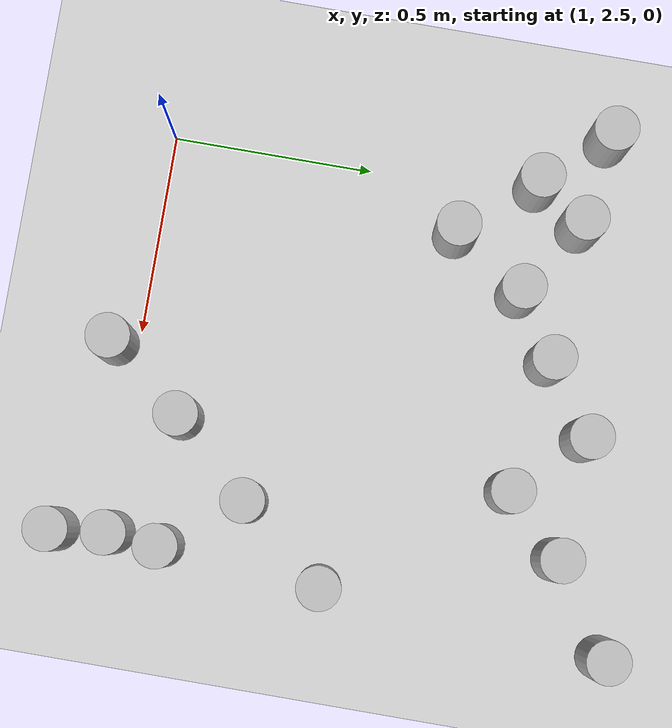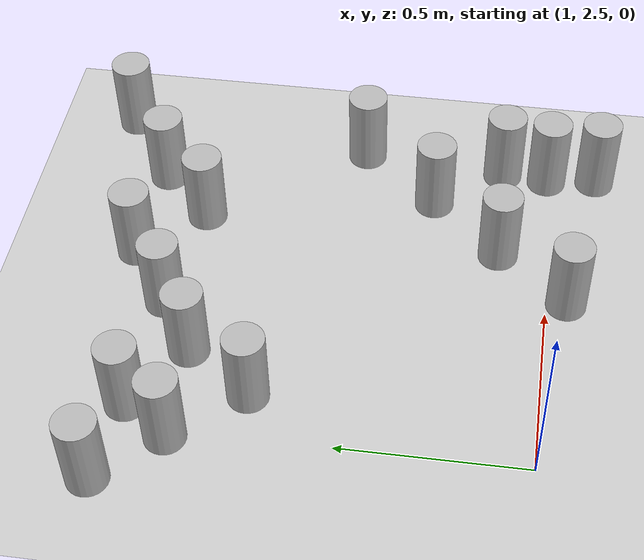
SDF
<sdf version="1.6">
 <world name="default">
  <model name="ground_plane">
   <static>1</static>
   <link name="link">
    <collision name="collision">
     <geometry><plane><normal>0 0 1</normal><size>100 100</size></plane></geometry>
     <surface><friction><ode><mu>100</mu><mu2>50</mu2></ode></friction></surface>
    </collision>
    <visual name="visual">
     <cast_shadows>0</cast_shadows>
     <geometry><plane><normal>0 0 1</normal><size>100 100</size></plane></geometry>
     <material>
      <script><uri>file://media/materials/scripts/gazebo.material</uri><name>Gazebo/Grey</name></script>
     </material>
    </visual>
   </link>
  </model>
  <model name="beer_4_clone">
   <link name="link">
    <pose>0 0 0.115 0 -0 0</pose>
    <inertial>
     <mass>0.01</mass>
     <inertia><ixx>0.00058</ixx><ixy>0</ixy><ixz>0</ixz><iyy>0.00058</iyy><iyz>0</iyz><izz>0.00019</izz></inertia>
    </inertial>
    <collision name="collision">
     <geometry><cylinder><radius>0.055</radius><length>0.23</length></cylinder></geometry>
    </collision>
    <visual name="visual">
     <geometry><cylinder><radius>0.055</radius><length>0.23</length></cylinder></geometry>
     <material>
      <script>
       <uri>model://beer/materials/scripts</uri>
       <uri>model://beer/materials/textures</uri>
       <name>Beer/Diffuse</name>
      </script>
     </material>
    </visual>
   </link>
   <pose>2.10824 3.75984 -3e-06 -0 -0 -1e-06</pose>
  </model>
  <model name="beer_4_clone_0">
   <link name="link">
    <pose>0 0 0.115 0 -0 0</pose>
    <inertial>
     <mass>0.01</mass>
     <inertia><ixx>0.00058</ixx><ixy>0</ixy><ixz>0</ixz><iyy>0.00058</iyy><iyz>0</iyz><izz>0.00019</izz></inertia>
    </inertial>
    <collision name="collision">
     <geometry><cylinder><radius>0.055</radius><length>0.23</length></cylinder></geometry>
    </collision>
    <visual name="visual">
     <geometry><cylinder><radius>0.055</radius><length>0.23</length></cylinder></geometry>
     <material>
      <script>
       <uri>model://beer/materials/scripts</uri>
       <uri>model://beer/materials/textures</uri>
       <name>Beer/Diffuse</name>
      </script>
     </material>
    </visual>
   </link>
   <pose>1.8879 3.61216 -3e-06 -0 -0 -1e-06</pose>
  </model>
  <model name="beer_4_clone_1">
   <link name="link">
    <pose>0 0 0.115 0 -0 0</pose>
    <inertial>
     <mass>0.01</mass>
     <inertia><ixx>0.00058</ixx><ixy>0</ixy><ixz>0</ixz><iyy>0.00058</iyy><iyz>0</iyz><izz>0.00019</izz></inertia>
    </inertial>
    <collision name="collision">
     <geometry><cylinder><radius>0.055</radius><length>0.23</length></cylinder></geometry>
    </collision>
    <visual name="visual">
     <geometry><cylinder><radius>0.055</radius><length>0.23</length></cylinder></geometry>
     <material>
      <script>
       <uri>model://beer/materials/scripts</uri>
       <uri>model://beer/materials/textures</uri>
       <name>Beer/Diffuse</name>
      </script>
     </material>
    </visual>
   </link>
   <pose>1.74318 3.46925 -3e-06 -0 -0 -1e-06</pose>
  </model>
  <model name="beer_4_clone_2">
   <link name="link">
    <pose>0 0 0.115 0 -0 0</pose>
    <inertial>
     <mass>0.01</mass>
     <inertia><ixx>0.00058</ixx><ixy>0</ixy><ixz>0</ixz><iyy>0.00058</iyy><iyz>0</iyz><izz>0.00019</izz></inertia>
    </inertial>
    <collision name="collision">
     <geometry><cylinder><radius>0.055</radius><length>0.23</length></cylinder></geometry>
    </collision>
    <visual name="visual">
     <geometry><cylinder><radius>0.055</radius><length>0.23</length></cylinder></geometry>
     <material>
      <script>
       <uri>model://beer/materials/scripts</uri>
       <uri>model://beer/materials/textures</uri>
       <name>Beer/Diffuse</name>
      </script>
     </material>
    </visual>
   </link>
   <pose>1.58363 3.63428 -3e-06 -0 -0 -1e-06</pose>
  </model>
  <model name="beer_4_clone_3">
   <link name="link">
    <pose>0 0 0.115 0 -0 0</pose>
    <inertial>
     <mass>0.01</mass>
     <inertia><ixx>0.00058</ixx><ixy>0</ixy><ixz>0</ixz><iyy>0.00058</iyy><iyz>0</iyz><izz>0.00019</izz></inertia>
    </inertial>
    <collision name="collision">
     <geometry><cylinder><radius>0.055</radius><length>0.23</length></cylinder></geometry>
    </collision>
    <visual name="visual">
     <geometry><cylinder><radius>0.055</radius><length>0.23</length></cylinder></geometry>
     <material>
      <script>
       <uri>model://beer/materials/scripts</uri>
       <uri>model://beer/materials/textures</uri>
       <name>Beer/Diffuse</name>
      </script>
     </material>
    </visual>
   </link>
   <pose>1.41011 3.51475 -3e-06 -0 -0 -1e-06</pose>
  </model>
  <model name="beer_4_clone_4">
   <link name="link">
    <pose>0 0 0.115 0 -0 0</pose>
    <inertial>
     <mass>0.01</mass>
     <inertia><ixx>0.00058</ixx><ixy>0</ixy><ixz>0</ixz><iyy>0.00058</iyy><iyz>0</iyz><izz>0.00019</izz></inertia>
    </inertial>
    <collision name="collision">
     <geometry><cylinder><radius>0.055</radius><length>0.23</length></cylinder></geometry>
    </collision>
    <visual name="visual">
     <geometry><cylinder><radius>0.055</radius><length>0.23</length></cylinder></geometry>
     <material>
      <script>
       <uri>model://beer/materials/scripts</uri>
       <uri>model://beer/materials/textures</uri>
       <name>Beer/Diffuse</name>
      </script>
     </material>
    </visual>
   </link>
   <pose>1.25318 3.41503 -3e-06 -0 -0 -1e-06</pose>
  </model>
  <model name="beer_4_clone_5">
   <link name="link">
    <pose>0 0 0.115 0 -0 0</pose>
    <inertial>
     <mass>0.01</mass>
     <inertia><ixx>0.00058</ixx><ixy>0</ixy><ixz>0</ixz><iyy>0.00058</iyy><iyz>0</iyz><izz>0.00019</izz></inertia>
    </inertial>
    <collision name="collision">
     <geometry><cylinder><radius>0.055</radius><length>0.23</length></cylinder></geometry>
    </collision>
    <visual name="visual">
     <geometry><cylinder><radius>0.055</radius><length>0.23</length></cylinder></geometry>
     <material>
      <script>
       <uri>model://beer/materials/scripts</uri>
       <uri>model://beer/materials/textures</uri>
       <name>Beer/Diffuse</name>
      </script>
     </material>
    </visual>
   </link>
   <pose>1.12951 3.23472 -3e-06 -0 -0 -1e-06</pose>
  </model>
  <model name="beer_4_clone_6">
   <link name="link">
    <pose>0 0 0.115 0 -0 0</pose>
    <inertial>
     <mass>0.01</mass>
     <inertia><ixx>0.00058</ixx><ixy>0</ixy><ixz>0</ixz><iyy>0.00058</iyy><iyz>0</iyz><izz>0.00019</izz></inertia>
    </inertial>
    <collision name="collision">
     <geometry><cylinder><radius>0.055</radius><length>0.23</length></cylinder></geometry>
    </collision>
    <visual name="visual">
     <geometry><cylinder><radius>0.055</radius><length>0.23</length></cylinder></geometry>
     <material>
      <script>
       <uri>model://beer/materials/scripts</uri>
       <uri>model://beer/materials/textures</uri>
       <name>Beer/Diffuse</name>
      </script>
     </material>
    </visual>
   </link>
   <pose>0.978681 3.41554 -3e-06 -0 -0 -1e-06</pose>
  </model>
  <model name="beer_4_clone_7">
   <link name="link">
    <pose>0 0 0.115 0 -0 0</pose>
    <inertial>
     <mass>0.01</mass>
     <inertia><ixx>0.00058</ixx><ixy>0</ixy><ixz>0</ixz><iyy>0.00058</iyy><iyz>0</iyz><izz>0.00019</izz></inertia>
    </inertial>
    <collision name="collision">
     <geometry><cylinder><radius>0.055</radius><length>0.23</length></cylinder></geometry>
    </collision>
    <visual name="visual">
     <geometry><cylinder><radius>0.055</radius><length>0.23</length></cylinder></geometry>
     <material>
      <script>
       <uri>model://beer/materials/scripts</uri>
       <uri>model://beer/materials/textures</uri>
       <name>Beer/Diffuse</name>
      </script>
     </material>
    </visual>
   </link>
   <pose>2.01904 2.64681 -3e-06 -0 -0 -1e-06</pose>
  </model>
  <model name="beer_4_clone_8">
   <link name="link">
    <pose>0 0 0.115 0 -0 0</pose>
    <inertial>
     <mass>0.01</mass>
     <inertia><ixx>0.00058</ixx><ixy>0</ixy><ixz>0</ixz><iyy>0.00058</iyy><iyz>0</iyz><izz>0.00019</izz></inertia>
    </inertial>
    <collision name="collision">
     <geometry><cylinder><radius>0.055</radius><length>0.23</length></cylinder></geometry>
    </collision>
    <visual name="visual">
     <geometry><cylinder><radius>0.055</radius><length>0.23</length></cylinder></geometry>
     <material>
      <script>
       <uri>model://beer/materials/scripts</uri>
       <uri>model://beer/materials/textures</uri>
       <name>Beer/Diffuse</name>
      </script>
     </material>
    </visual>
   </link>
   <pose>2.00769 2.51934 -3e-06 -0 -0 -1e-06</pose>
  </model>
  <model name="beer_4_clone_9">
   <link name="link">
    <pose>0 0 0.115 0 -0 0</pose>
    <inertial>
     <mass>0.01</mass>
     <inertia><ixx>0.00058</ixx><ixy>0</ixy><ixz>0</ixz><iyy>0.00058</iyy><iyz>0</iyz><izz>0.00019</izz></inertia>
    </inertial>
    <collision name="collision">
     <geometry><cylinder><radius>0.055</radius><length>0.23</length></cylinder></geometry>
    </collision>
    <visual name="visual">
     <geometry><cylinder><radius>0.055</radius><length>0.23</length></cylinder></geometry>
     <material>
      <script>
       <uri>model://beer/materials/scripts</uri>
       <uri>model://beer/materials/textures</uri>
       <name>Beer/Diffuse</name>
      </script>
     </material>
    </visual>
   </link>
   <pose>2.02281 2.38067 -3e-06 -0 -0 -1e-06</pose>
  </model>
  <model name="beer_4_clone_10_clone_6">
   <link name="link">
    <pose>0 0 0.115 0 -0 0</pose>
    <inertial>
     <mass>0.01</mass>
     <inertia><ixx>0.00058</ixx><ixy>0</ixy><ixz>0</ixz><iyy>0.00058</iyy><iyz>0</iyz><izz>0.00019</izz></inertia>
    </inertial>
    <collision name="collision">
     <geometry><cylinder><radius>0.055</radius><length>0.23</length></cylinder></geometry>
    </collision>
    <visual name="visual">
     <geometry><cylinder><radius>0.055</radius><length>0.23</length></cylinder></geometry>
     <material>
      <script>
       <uri>model://beer/materials/scripts</uri>
       <uri>model://beer/materials/textures</uri>
       <name>Beer/Diffuse</name>
      </script>
     </material>
    </visual>
   </link>
   <pose>2.05198 3.04877 -1e-06 2e-06 0 -1.3e-05</pose>
  </model>
  <model name="beer_4_clone_10_clone_7">
   <link name="link">
    <pose>0 0 0.115 0 -0 0</pose>
    <inertial>
     <mass>0.01</mass>
     <inertia><ixx>0.00058</ixx><ixy>0</ixy><ixz>0</ixz><iyy>0.00058</iyy><iyz>0</iyz><izz>0.00019</izz></inertia>
    </inertial>
    <collision name="collision">
     <geometry><cylinder><radius>0.055</radius><length>0.23</length></cylinder></geometry>
    </collision>
    <visual name="visual">
     <geometry><cylinder><radius>0.055</radius><length>0.23</length></cylinder></geometry>
     <material>
      <script>
       <uri>model://beer/materials/scripts</uri>
       <uri>model://beer/materials/textures</uri>
       <name>Beer/Diffuse</name>
      </script>
     </material>
    </visual>
   </link>
   <pose>1.8763 2.83396 -1e-06 2e-06 0 -1.3e-05</pose>
  </model>
  <model name="beer_4_clone_10_clone_8">
   <link name="link">
    <pose>0 0 0.115 0 -0 0</pose>
    <inertial>
     <mass>0.01</mass>
     <inertia><ixx>0.00058</ixx><ixy>0</ixy><ixz>0</ixz><iyy>0.00058</iyy><iyz>0</iyz><izz>0.00019</izz></inertia>
    </inertial>
    <collision name="collision">
     <geometry><cylinder><radius>0.055</radius><length>0.23</length></cylinder></geometry>
    </collision>
    <visual name="visual">
     <geometry><cylinder><radius>0.055</radius><length>0.23</length></cylinder></geometry>
     <material>
      <script>
       <uri>model://beer/materials/scripts</uri>
       <uri>model://beer/materials/textures</uri>
       <name>Beer/Diffuse</name>
      </script>
     </material>
    </visual>
   </link>
   <pose>1.69805 2.63951 -1e-06 2e-06 0 -1.3e-05</pose>
  </model>
  <model name="beer_4_clone_10_clone_9">
   <link name="link">
    <pose>0 0 0.115 0 -0 0</pose>
    <inertial>
     <mass>0.01</mass>
     <inertia><ixx>0.00058</ixx><ixy>0</ixy><ixz>0</ixz><iyy>0.00058</iyy><iyz>0</iyz><izz>0.00019</izz></inertia>
    </inertial>
    <collision name="collision">
     <geometry><cylinder><radius>0.055</radius><length>0.23</length></cylinder></geometry>
    </collision>
    <visual name="visual">
     <geometry><cylinder><radius>0.055</radius><length>0.23</length></cylinder></geometry>
     <material>
      <script>
       <uri>model://beer/materials/scripts</uri>
       <uri>model://beer/materials/textures</uri>
       <name>Beer/Diffuse</name>
      </script>
     </material>
    </visual>
   </link>
   <pose>1.54069 2.44587 -1e-06 2e-06 0 -1.3e-05</pose>
  </model>
  <model name="beer_4_clone_10_clone_16">
   <link name="link">
    <pose>0 0 0.115 0 -0 0</pose>
    <inertial>
     <mass>0.01</mass>
     <inertia><ixx>0.00058</ixx><ixy>0</ixy><ixz>0</ixz><iyy>0.00058</iyy><iyz>0</iyz><izz>0.00019</izz></inertia>
    </inertial>
    <collision name="collision">
     <geometry><cylinder><radius>0.055</radius><length>0.23</length></cylinder></geometry>
    </collision>
    <visual name="visual">
     <geometry><cylinder><radius>0.055</radius><length>0.23</length></cylinder></geometry>
     <material>
      <script>
       <uri>model://beer/materials/scripts</uri>
       <uri>model://beer/materials/textures</uri>
       <name>Beer/Diffuse</name>
      </script>
     </material>
    </visual>
   </link>
   <pose>1.06362 3.53713 -1e-06 2e-06 0 -1.3e-05</pose>
  </model>
  <model name="beer_4_clone_10_clone_17">
   <link name="link">
    <pose>0 0 0.115 0 -0 0</pose>
    <inertial>
     <mass>0.01</mass>
     <inertia><ixx>0.00058</ixx><ixy>0</ixy><ixz>0</ixz><iyy>0.00058</iyy><iyz>0</iyz><izz>0.00019</izz></inertia>
    </inertial>
    <collision name="collision">
     <geometry><cylinder><radius>0.055</radius><length>0.23</length></cylinder></geometry>
    </collision>
    <visual name="visual">
     <geometry><cylinder><radius>0.055</radius><length>0.23</length></cylinder></geometry>
     <material>
      <script>
       <uri>model://beer/materials/scripts</uri>
       <uri>model://beer/materials/textures</uri>
       <name>Beer/Diffuse</name>
      </script>
     </material>
    </visual>
   </link>
   <pose>0.835607 3.57316 -1e-06 2e-06 0 -1.3e-05</pose>
  </model>
 </world>
</sdf>
